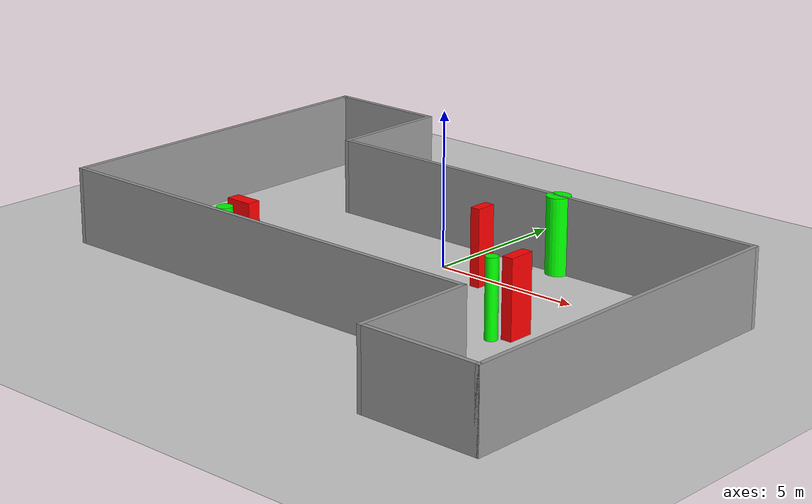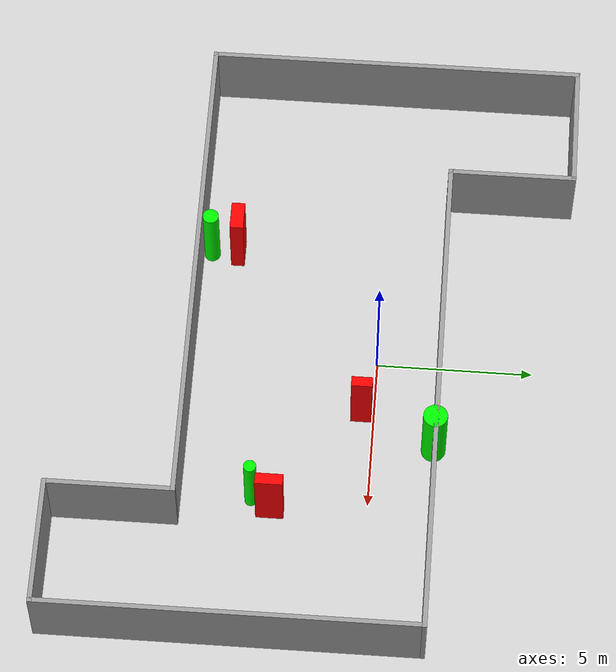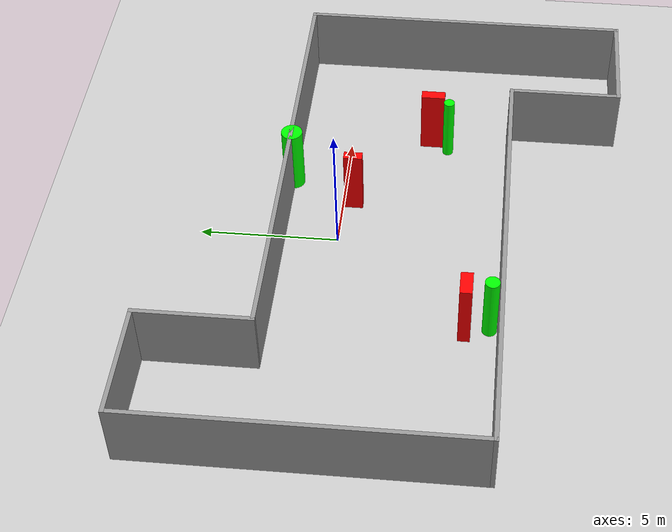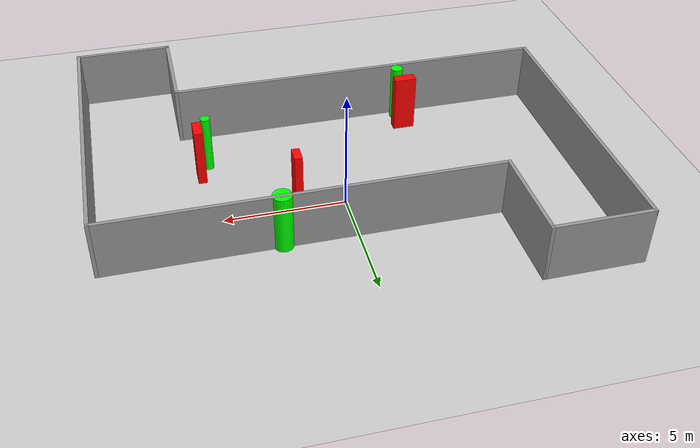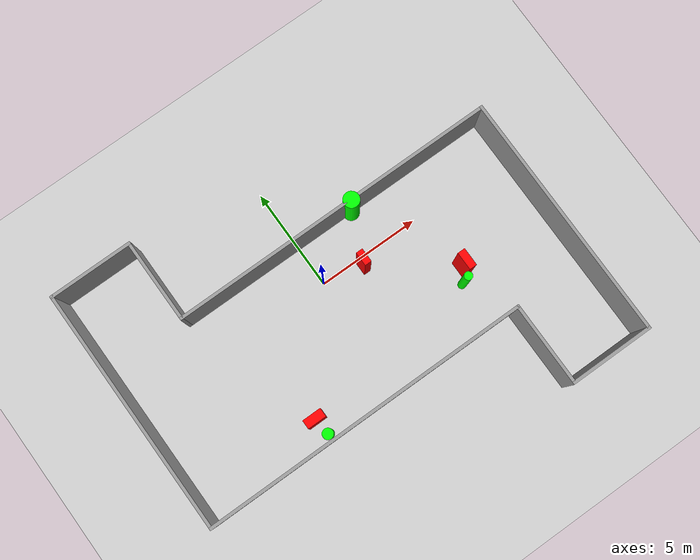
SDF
<sdf version="1.7">
 <world name="default">
  <light name="sun" type="directional">
   <pose>0 0 10 0 -0 0</pose>
   <diffuse>0.8 0.8 0.8 1</diffuse>
   <specular>0.2 0.2 0.2 1</specular>
   <attenuation>
    <range>1000</range>
    <constant>0.9</constant>
    <linear>0.01</linear>
    <quadratic>0.001</quadratic>
   </attenuation>
   <direction>-0.5 0.1 -0.9</direction>
   <spot><inner_angle>0</inner_angle><outer_angle>0</outer_angle><falloff>0</falloff></spot>
  </light>
  <model name="ground_plane">
   <static>1</static>
   <link name="link">
    <collision name="collision">
     <geometry><plane><normal>0 0 1</normal><size>100 100</size></plane></geometry>
     <surface>
      <contact><collide_bitmask>65535</collide_bitmask></contact>
      <friction><ode><mu>100</mu><mu2>50</mu2></ode></friction>
     </surface>
    </collision>
    <visual name="visual">
     <cast_shadows>0</cast_shadows>
     <geometry><plane><normal>0 0 1</normal><size>100 100</size></plane></geometry>
     <material>
      <script><uri>file://media/materials/scripts/gazebo.material</uri><name>Gazebo/Grey</name></script>
     </material>
    </visual>
   </link>
  </model>
  <gravity>0 0 -9.8</gravity>
  <magnetic_field>6e-06 2.3e-05 -4.2e-05</magnetic_field>
  <atmosphere type="adiabatic"/>
  <physics type="ode">
   <max_step_size>0.001</max_step_size>
   <real_time_factor>1</real_time_factor>
   <real_time_update_rate>1000</real_time_update_rate>
  </physics>
  <scene><ambient>0.4 0.4 0.4 1</ambient><background>0.7 0.7 0.7 1</background><shadows>1</shadows></scene>
  <spherical_coordinates>
   <surface_model>EARTH_WGS84</surface_model>
   <latitude_deg>0</latitude_deg>
   <longitude_deg>0</longitude_deg>
   <elevation>0</elevation>
   <heading_deg>0</heading_deg>
  </spherical_coordinates>
  <model name="my_base_walls">
   <link name="Wall_13">
    <collision name="Wall_13_Collision">
     <geometry><box><size>12.15 0.15 2.5</size></box></geometry>
     <pose>0 0 1.25 0 -0 0</pose>
    </collision>
    <visual name="Wall_13_Visual">
     <pose>0 0 1.25 0 -0 0</pose>
     <geometry><box><size>12.15 0.15 2.5</size></box></geometry>
     <material>
      <script><uri>file://media/materials/scripts/gazebo.material</uri><name>Gazebo/Grey</name></script>
      <ambient>1 1 1 1</ambient>
     </material>
     <meta><layer>0</layer></meta>
    </visual>
    <pose>10 -2 0 0 -0 1.5708</pose>
   </link>
   <link name="Wall_15">
    <collision name="Wall_15_Collision">
     <geometry><box><size>16.15 0.15 2.5</size></box></geometry>
     <pose>0 0 1.25 0 -0 0</pose>
    </collision>
    <visual name="Wall_15_Visual">
     <pose>0 0 1.25 0 -0 0</pose>
     <geometry><box><size>16.15 0.15 2.5</size></box></geometry>
     <material>
      <script><uri>file://media/materials/scripts/gazebo.material</uri><name>Gazebo/Grey</name></script>
      <ambient>1 1 1 1</ambient>
     </material>
     <meta><layer>0</layer></meta>
    </visual>
    <pose>2 4 0 0 -0 3.14159</pose>
   </link>
   <link name="Wall_17">
    <collision name="Wall_17_Collision">
     <geometry><box><size>4.15 0.15 2.5</size></box></geometry>
     <pose>0 0 1.25 0 -0 0</pose>
    </collision>
    <visual name="Wall_17_Visual">
     <pose>0 0 1.25 0 -0 0</pose>
     <geometry><box><size>4.15 0.15 2.5</size></box></geometry>
     <material>
      <script><uri>file://media/materials/scripts/gazebo.material</uri><name>Gazebo/Grey</name></script>
      <ambient>1 1 1 1</ambient>
     </material>
     <meta><layer>0</layer></meta>
    </visual>
    <pose>6 -6 0 0 -0 -1.5708</pose>
   </link>
   <link name="Wall_19">
    <collision name="Wall_19_Collision">
     <geometry><box><size>12.15 0.15 2.5</size></box></geometry>
     <pose>0 0 1.25 0 -0 0</pose>
    </collision>
    <visual name="Wall_19_Visual">
     <pose>0 0 1.25 0 -0 0</pose>
     <geometry><box><size>12.15 0.15 2.5</size></box></geometry>
     <material>
      <script><uri>file://media/materials/scripts/gazebo.material</uri><name>Gazebo/Grey</name></script>
      <ambient>1 1 1 1</ambient>
     </material>
     <meta><layer>0</layer></meta>
    </visual>
    <pose>-10 2 0 0 -0 1.5708</pose>
   </link>
   <link name="Wall_21">
    <collision name="Wall_21_Collision">
     <geometry><box><size>4.15 0.15 2.5</size></box></geometry>
     <pose>0 0 1.25 0 -0 0</pose>
    </collision>
    <visual name="Wall_21_Visual">
     <pose>0 0 1.25 0 -0 0</pose>
     <geometry><box><size>4.15 0.15 2.5</size></box></geometry>
     <material>
      <script><uri>file://media/materials/scripts/gazebo.material</uri><name>Gazebo/Grey</name></script>
      <ambient>1 1 1 1</ambient>
     </material>
     <meta><layer>0</layer></meta>
    </visual>
    <pose>-8 8 0 0 -0 0</pose>
   </link>
   <link name="Wall_23">
    <collision name="Wall_23_Collision">
     <geometry><box><size>4.15 0.15 2.5</size></box></geometry>
     <pose>0 0 1.25 0 -0 0</pose>
    </collision>
    <visual name="Wall_23_Visual">
     <pose>0 0 1.25 0 -0 0</pose>
     <geometry><box><size>4.15 0.15 2.5</size></box></geometry>
     <material>
      <script><uri>file://media/materials/scripts/gazebo.material</uri><name>Gazebo/Grey</name></script>
      <ambient>1 1 1 1</ambient>
     </material>
     <meta><layer>0</layer></meta>
    </visual>
    <pose>-6 6 0 0 -0 -1.5708</pose>
   </link>
   <link name="Wall_25">
    <collision name="Wall_25_Collision">
     <geometry><box><size>4.15 0.15 2.5</size></box></geometry>
     <pose>0 0 1.25 0 -0 0</pose>
    </collision>
    <visual name="Wall_25_Visual">
     <pose>0 0 1.25 0 -0 0</pose>
     <geometry><box><size>4.15 0.15 2.5</size></box></geometry>
     <material>
      <script><uri>file://media/materials/scripts/gazebo.material</uri><name>Gazebo/Grey</name></script>
      <ambient>1 1 1 1</ambient>
     </material>
     <meta><layer>0</layer></meta>
    </visual>
    <pose>8 -8 0 0 -0 0</pose>
   </link>
   <link name="Wall_9">
    <collision name="Wall_9_Collision">
     <geometry><box><size>16.15 0.15 2.5</size></box></geometry>
     <pose>0 0 1.25 0 -0 0</pose>
    </collision>
    <visual name="Wall_9_Visual">
     <pose>0 0 1.25 0 -0 0</pose>
     <geometry><box><size>16.15 0.15 2.5</size></box></geometry>
     <material>
      <script><uri>file://media/materials/scripts/gazebo.material</uri><name>Gazebo/Grey</name></script>
      <ambient>1 1 1 1</ambient>
     </material>
     <meta><layer>0</layer></meta>
    </visual>
    <pose>-2 -4 0 0 -0 3.14159</pose>
   </link>
   <static>1</static>
   <pose>-0 -2 0 0 -0 0</pose>
  </model>
  <model name="cylinder1">
   <static>1</static>
   <link name="link">
    <inertial>
     <mass>1</mass>
     <inertia><ixx>0.5</ixx><ixy>0</ixy><ixz>0</ixz><iyy>0.5</iyy><iyz>0</iyz><izz>1</izz></inertia>
    </inertial>
    <collision name="collision">
     <geometry><cylinder><radius>0.19988519170242502</radius><length>2.5</length></cylinder></geometry>
    </collision>
    <visual name="visual">
     <geometry><cylinder><radius>0.19988519170242502</radius><length>2.5</length></cylinder></geometry>
     <material>
      <ambient>0 1 0 1</ambient>
      <diffuse>0 1 0 1</diffuse>
      <specular>0.1 0.1 0.1 1</specular>
      <emissive>0 0 0 0</emissive>
     </material>
    </visual>
   </link>
   <pose>5.068102816563266 -3.6926021379761824 1.25 0 0 0</pose>
  </model>
  <model name="cylinder2">
   <static>1</static>
   <link name="link">
    <inertial>
     <mass>1</mass>
     <inertia><ixx>0.5</ixx><ixy>0</ixy><ixz>0</ixz><iyy>0.5</iyy><iyz>0</iyz><izz>1</izz></inertia>
    </inertial>
    <collision name="collision">
     <geometry><cylinder><radius>0.38721437348738574</radius><length>2.5</length></cylinder></geometry>
    </collision>
    <visual name="visual">
     <geometry><cylinder><radius>0.38721437348738574</radius><length>2.5</length></cylinder></geometry>
     <material>
      <ambient>0 1 0 1</ambient>
      <diffuse>0 1 0 1</diffuse>
      <specular>0.1 0.1 0.1 1</specular>
      <emissive>0 0 0 0</emissive>
     </material>
    </visual>
   </link>
   <pose>2.936885155387653 1.96664950543009 1.25 0 0 0</pose>
  </model>
  <model name="cylinder3">
   <static>1</static>
   <link name="link">
    <inertial>
     <mass>1</mass>
     <inertia><ixx>0.5</ixx><ixy>0</ixy><ixz>0</ixz><iyy>0.5</iyy><iyz>0</iyz><izz>1</izz></inertia>
    </inertial>
    <collision name="collision">
     <geometry><cylinder><radius>0.25732070365561655</radius><length>2.5</length></cylinder></geometry>
    </collision>
    <visual name="visual">
     <geometry><cylinder><radius>0.25732070365561655</radius><length>2.5</length></cylinder></geometry>
     <material>
      <ambient>0 1 0 1</ambient>
      <diffuse>0 1 0 1</diffuse>
      <specular>0.1 0.1 0.1 1</specular>
      <emissive>0 0 0 0</emissive>
     </material>
    </visual>
   </link>
   <pose>-3.7648780342033135 -5.653276532465224 1.25 0 0 0</pose>
  </model>
  <model name="box1">
   <static>1</static>
   <link name="link">
    <inertial>
     <mass>1</mass>
     <inertia><ixx>0.083</ixx><ixy>0</ixy><ixz>0</ixz><iyy>0.083</iyy><iyz>0</iyz><izz>0.083</izz></inertia>
    </inertial>
    <collision name="collision">
     <geometry><box><size>0.3301789406816217 0.6758960632137216 2.5</size></box></geometry>
    </collision>
    <visual name="visual">
     <geometry><box><size>0.3301789406816217 0.6758960632137216 2.5</size></box></geometry>
     <material>
      <ambient>1 0 0 1</ambient>
      <diffuse>1 0 0 1</diffuse>
      <specular>0.1 0.1 0.1 1</specular>
      <emissive>0 0 0 0</emissive>
     </material>
    </visual>
    <sensor name="my_contact" type="contact">
     <contact><collision>box_collision</collision><topic>__default_topic__</topic></contact>
    </sensor>
   </link>
   <pose>1.891979208468868 -0.40009220304706083 1.25 0 0 0</pose>
  </model>
  <model name="box2">
   <static>1</static>
   <link name="link">
    <inertial>
     <mass>1</mass>
     <inertia><ixx>0.083</ixx><ixy>0</ixy><ixz>0</ixz><iyy>0.083</iyy><iyz>0</iyz><izz>0.083</izz></inertia>
    </inertial>
    <collision name="collision">
     <geometry><box><size>0.9196323308688716 0.43275359349623266 2.5</size></box></geometry>
    </collision>
    <visual name="visual">
     <geometry><box><size>0.9196323308688716 0.43275359349623266 2.5</size></box></geometry>
     <material>
      <ambient>1 0 0 1</ambient>
      <diffuse>1 0 0 1</diffuse>
      <specular>0.1 0.1 0.1 1</specular>
      <emissive>0 0 0 0</emissive>
     </material>
    </visual>
    <sensor name="my_contact" type="contact">
     <contact><collision>box_collision</collision><topic>__default_topic__</topic></contact>
    </sensor>
   </link>
   <pose>-3.8578713975038172 -4.795313698947537 1.25 0 0 0</pose>
  </model>
  <model name="box3">
   <static>1</static>
   <link name="link">
    <inertial>
     <mass>1</mass>
     <inertia><ixx>0.083</ixx><ixy>0</ixy><ixz>0</ixz><iyy>0.083</iyy><iyz>0</iyz><izz>0.083</izz></inertia>
    </inertial>
    <collision name="collision">
     <geometry><box><size>0.3630174648610338 0.8784785266221466 2.5</size></box></geometry>
    </collision>
    <visual name="visual">
     <geometry><box><size>0.3630174648610338 0.8784785266221466 2.5</size></box></geometry>
     <material>
      <ambient>1 0 0 1</ambient>
      <diffuse>1 0 0 1</diffuse>
      <specular>0.1 0.1 0.1 1</specular>
      <emissive>0 0 0 0</emissive>
     </material>
    </visual>
    <sensor name="my_contact" type="contact">
     <contact><collision>box_collision</collision><topic>__default_topic__</topic></contact>
    </sensor>
   </link>
   <pose>5.465471706544957 -3.0680983481964272 1.25 0 0 0</pose>
  </model>
 </world>
</sdf>
